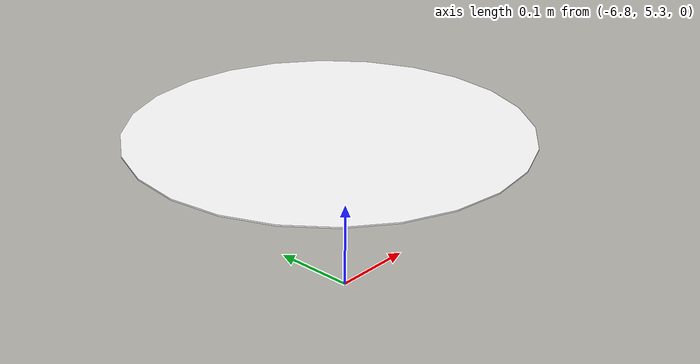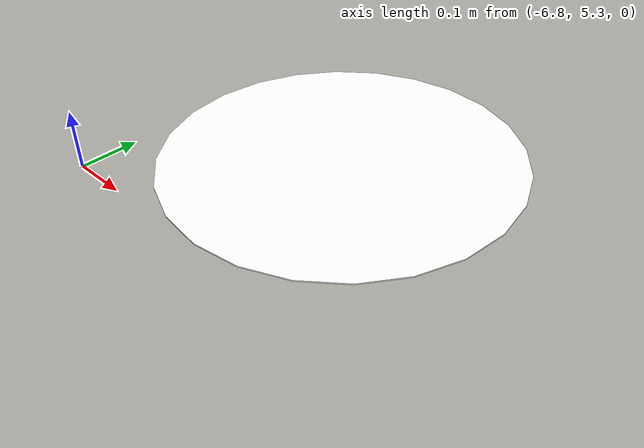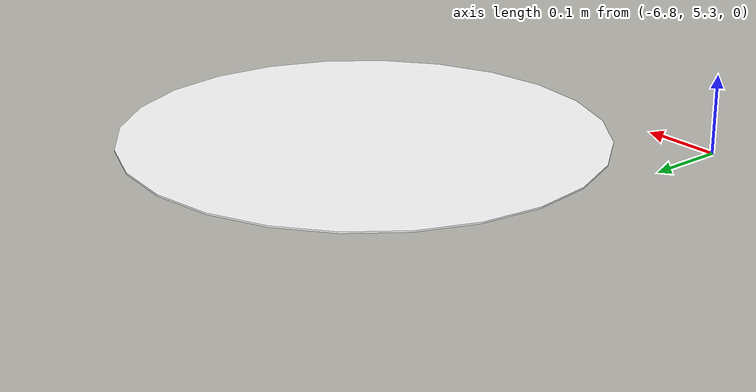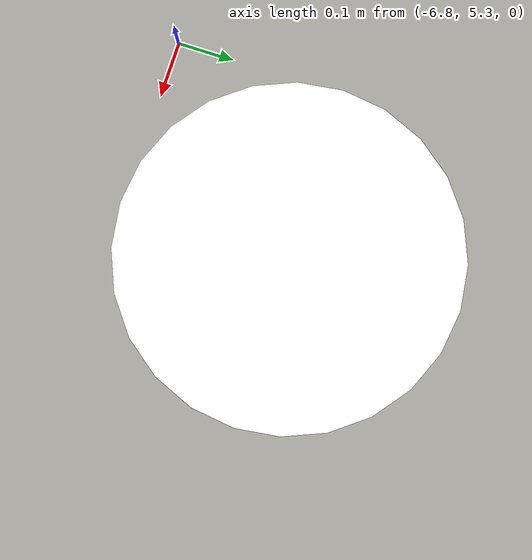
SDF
<sdf version="1.9">
 <world name="test_world_lane_vary">
  <include><uri>https://fuel.gazebosim.org/1.0/openrobotics/models/Sun</uri></include>
  <include><uri>model://pothole</uri><name>pothole_01</name><pose>-6.5 5.6 0.01 0 0 0</pose></include>
 </world>
</sdf>
